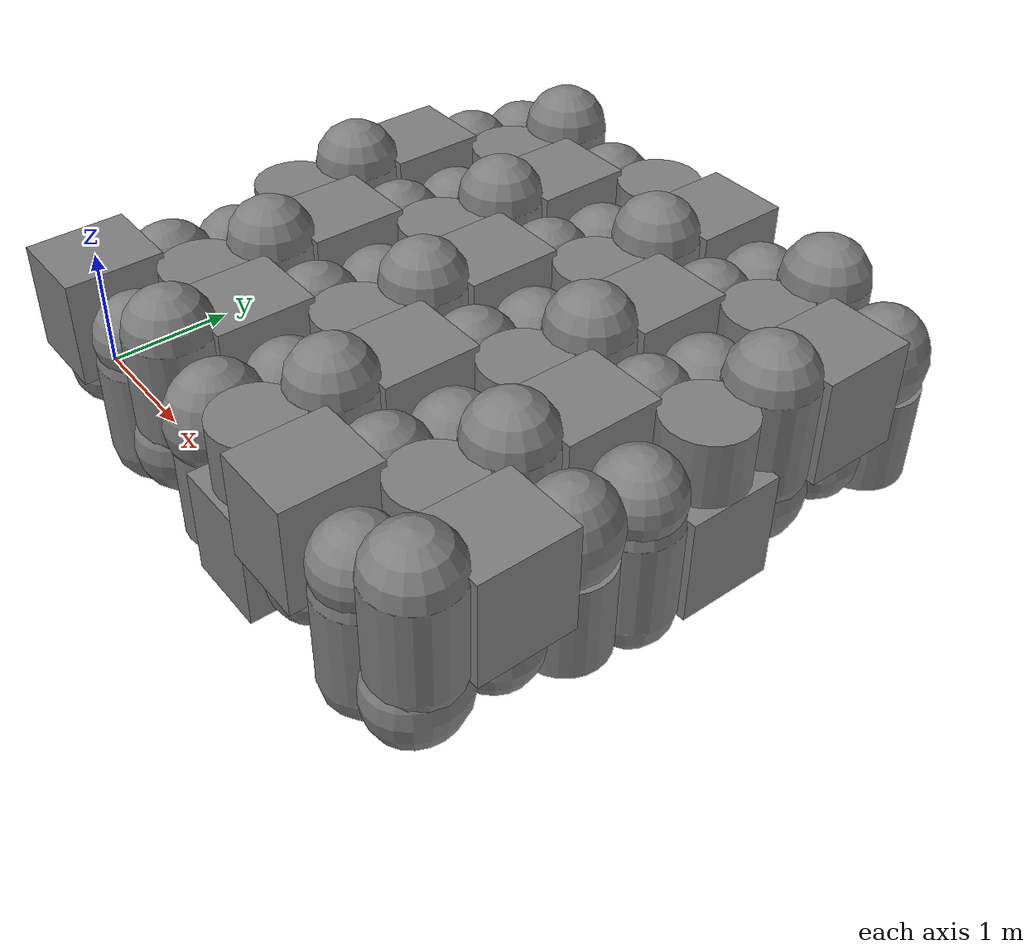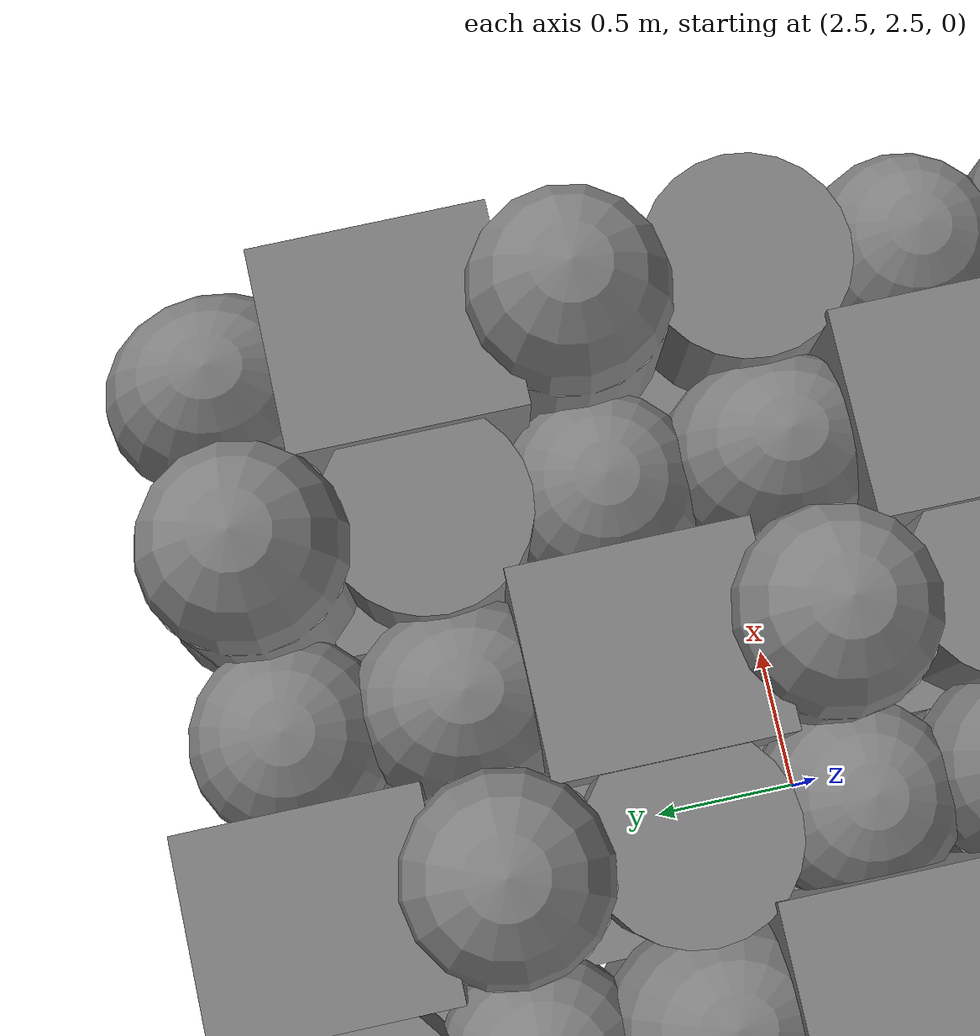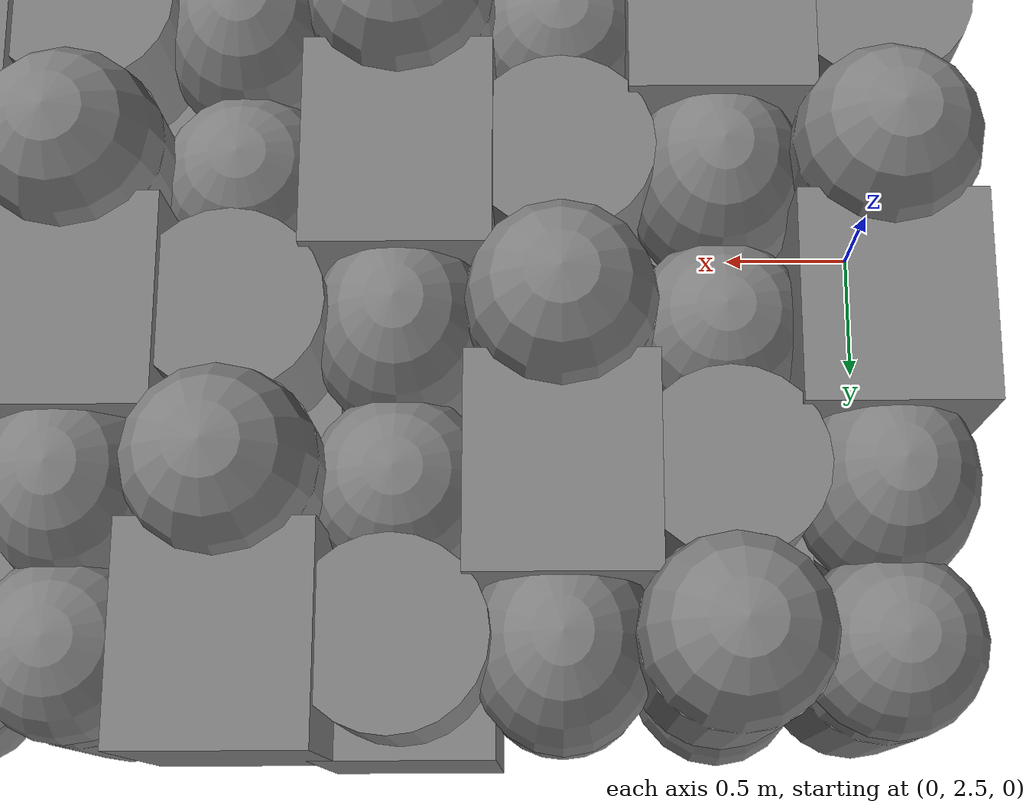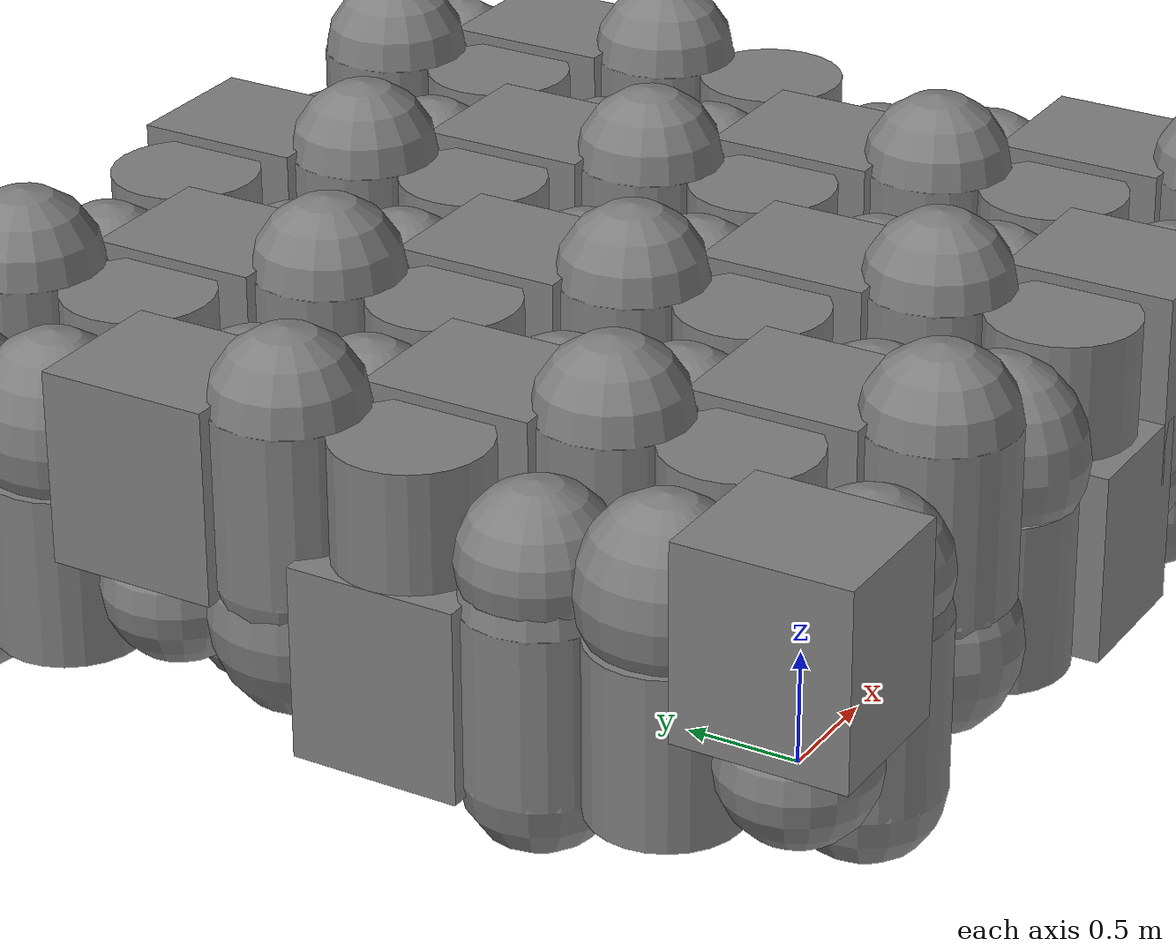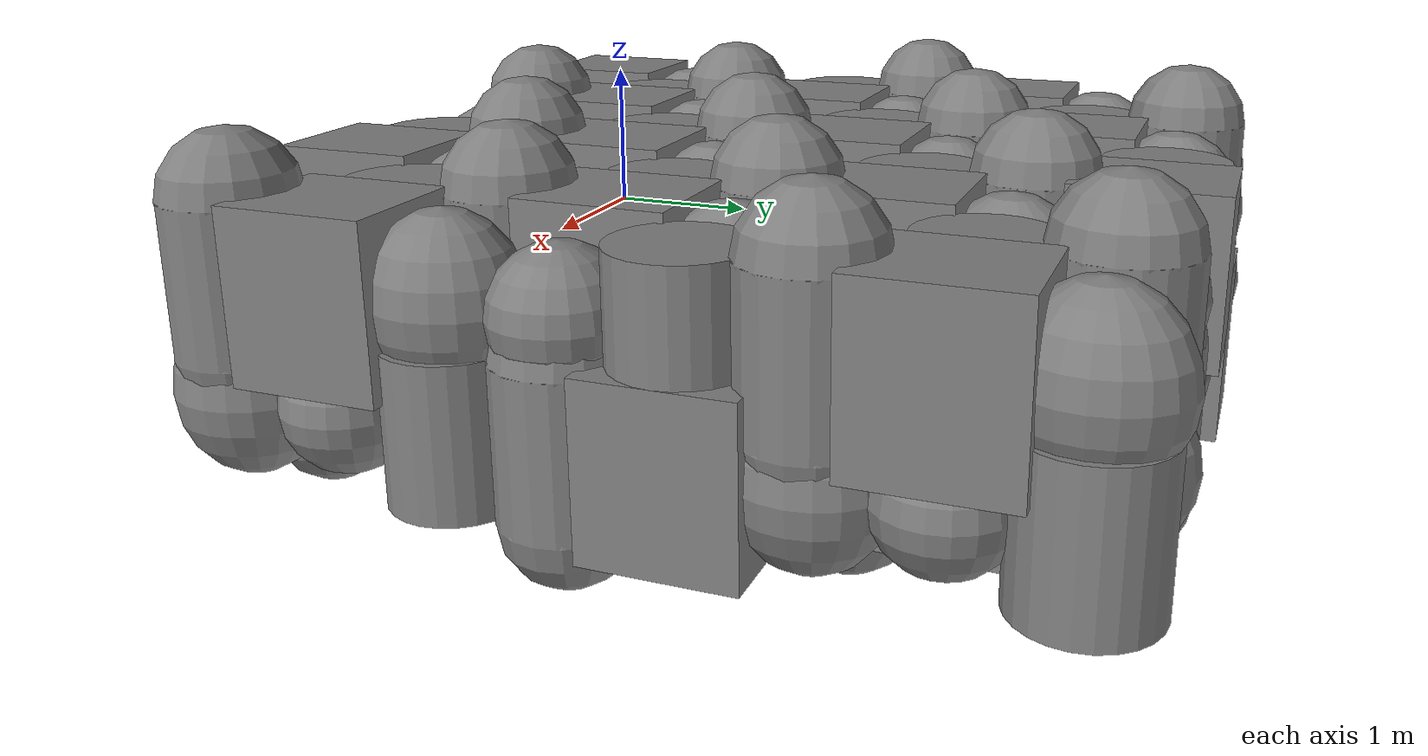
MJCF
<mujoco><option ccd_iterations="100"/><worldbody><body pos="0.0 0.0 0.0"><freejoint/><geom type="sphere" size=".35 .4 .45"/></body><body pos="0.6 0.0 0.0"><freejoint/><geom type="capsule" size=".35 .4 .45"/></body><body pos="1.2 0.0 0.0"><freejoint/><geom type="ellipsoid" size=".35 .4 .45"/></body><body pos="1.7999999999999998 0.0 0.0"><freejoint/><geom type="cylinder" size=".35 .4 .45"/></body><body pos="2.4 0.0 0.0"><freejoint/><geom type="box" size=".35 .4 .45"/></body><body pos="3.0 0.0 0.0"><freejoint/><geom type="sphere" size=".35 .4 .45"/></body><body pos="3.5999999999999996 0.0 0.0"><freejoint/><geom type="capsule" size=".35 .4 .45"/></body><body pos="4.2 0.0 0.0"><freejoint/><geom type="ellipsoid" size=".35 .4 .45"/></body><body pos="0.0 0.6 0.0"><freejoint/><geom type="cylinder" size=".35 .4 .45"/></body><body pos="0.6 0.6 0.0"><freejoint/><geom type="box" size=".35 .4 .45"/></body><body pos="1.2 0.6 0.0"><freejoint/><geom type="sphere" size=".35 .4 .45"/></body><body pos="1.7999999999999998 0.6 0.0"><freejoint/><geom type="capsule" size=".35 .4 .45"/></body><body pos="2.4 0.6 0.0"><freejoint/><geom type="ellipsoid" size=".35 .4 .45"/></body><body pos="3.0 0.6 0.0"><freejoint/><geom type="cylinder" size=".35 .4 .45"/></body><body pos="3.5999999999999996 0.6 0.0"><freejoint/><geom type="box" size=".35 .4 .45"/></body><body pos="4.2 0.6 0.0"><freejoint/><geom type="sphere" size=".35 .4 .45"/></body><body pos="0.0 1.2 0.0"><freejoint/><geom type="capsule" size=".35 .4 .45"/></body><body pos="0.6 1.2 0.0"><freejoint/><geom type="ellipsoid" size=".35 .4 .45"/></body><body pos="1.2 1.2 0.0"><freejoint/><geom type="cylinder" size=".35 .4 .45"/></body><body pos="1.7999999999999998 1.2 0.0"><freejoint/><geom type="box" size=".35 .4 .45"/></body><body pos="2.4 1.2 0.0"><freejoint/><geom type="sphere" size=".35 .4 .45"/></body><body pos="3.0 1.2 0.0"><freejoint/><geom type="capsule" size=".35 .4 .45"/></body><body pos="3.5999999999999996 1.2 0.0"><freejoint/><geom type="ellipsoid" size=".35 .4 .45"/></body><body pos="4.2 1.2 0.0"><freejoint/><geom type="cylinder" size=".35 .4 .45"/></body><body pos="0.0 1.7999999999999998 0.0"><freejoint/><geom type="box" size=".35 .4 .45"/></body><body pos="0.6 1.7999999999999998 0.0"><freejoint/><geom type="sphere" size=".35 .4 .45"/></body><body pos="1.2 1.7999999999999998 0.0"><freejoint/><geom type="capsule" size=".35 .4 .45"/></body><body pos="1.7999999999999998 1.7999999999999998 0.0"><freejoint/><geom type="ellipsoid" size=".35 .4 .45"/></body><body pos="2.4 1.7999999999999998 0.0"><freejoint/><geom type="cylinder" size=".35 .4 .45"/></body><body pos="3.0 1.7999999999999998 0.0"><freejoint/><geom type="box" size=".35 .4 .45"/></body><body pos="3.5999999999999996 1.7999999999999998 0.0"><freejoint/><geom type="sphere" size=".35 .4 .45"/></body><body pos="4.2 1.7999999999999998 0.0"><freejoint/><geom type="capsule" size=".35 .4 .45"/></body><body pos="0.0 2.4 0.0"><freejoint/><geom type="ellipsoid" size=".35 .4 .45"/></body><body pos="0.6 2.4 0.0"><freejoint/><geom type="cylinder" size=".35 .4 .45"/></body><body pos="1.2 2.4 0.0"><freejoint/><geom type="box" size=".35 .4 .45"/></body><body pos="1.7999999999999998 2.4 0.0"><freejoint/><geom type="sphere" size=".35 .4 .45"/></body><body pos="2.4 2.4 0.0"><freejoint/><geom type="capsule" size=".35 .4 .45"/></body><body pos="3.0 2.4 0.0"><freejoint/><geom type="ellipsoid" size=".35 .4 .45"/></body><body pos="3.5999999999999996 2.4 0.0"><freejoint/><geom type="cylinder" size=".35 .4 .45"/></body><body pos="4.2 2.4 0.0"><freejoint/><geom type="box" size=".35 .4 .45"/></body><body pos="0.0 3.0 0.0"><freejoint/><geom type="sphere" size=".35 .4 .45"/></body><body pos="0.6 3.0 0.0"><freejoint/><geom type="capsule" size=".35 .4 .45"/></body><body pos="1.2 3.0 0.0"><freejoint/><geom type="ellipsoid" size=".35 .4 .45"/></body><body pos="1.7999999999999998 3.0 0.0"><freejoint/><geom type="cylinder" size=".35 .4 .45"/></body><body pos="2.4 3.0 0.0"><freejoint/><geom type="box" size=".35 .4 .45"/></body><body pos="3.0 3.0 0.0"><freejoint/><geom type="sphere" size=".35 .4 .45"/></body><body pos="3.5999999999999996 3.0 0.0"><freejoint/><geom type="capsule" size=".35 .4 .45"/></body><body pos="4.2 3.0 0.0"><freejoint/><geom type="ellipsoid" size=".35 .4 .45"/></body><body pos="0.0 3.5999999999999996 0.0"><freejoint/><geom type="cylinder" size=".35 .4 .45"/></body><body pos="0.6 3.5999999999999996 0.0"><freejoint/><geom type="box" size=".35 .4 .45"/></body><body pos="1.2 3.5999999999999996 0.0"><freejoint/><geom type="sphere" size=".35 .4 .45"/></body><body pos="1.7999999999999998 3.5999999999999996 0.0"><freejoint/><geom type="capsule" size=".35 .4 .45"/></body><body pos="2.4 3.5999999999999996 0.0"><freejoint/><geom type="ellipsoid" size=".35 .4 .45"/></body><body pos="3.0 3.5999999999999996 0.0"><freejoint/><geom type="cylinder" size=".35 .4 .45"/></body><body pos="3.5999999999999996 3.5999999999999996 0.0"><freejoint/><geom type="box" size=".35 .4 .45"/></body><body pos="4.2 3.5999999999999996 0.0"><freejoint/><geom type="sphere" size=".35 .4 .45"/></body><body pos="0.0 4.2 0.0"><freejoint/><geom type="capsule" size=".35 .4 .45"/></body><body pos="0.6 4.2 0.0"><freejoint/><geom type="ellipsoid" size=".35 .4 .45"/></body><body pos="1.2 4.2 0.0"><freejoint/><geom type="cylinder" size=".35 .4 .45"/></body><body pos="1.7999999999999998 4.2 0.0"><freejoint/><geom type="box" size=".35 .4 .45"/></body><body pos="2.4 4.2 0.0"><freejoint/><geom type="sphere" size=".35 .4 .45"/></body><body pos="3.0 4.2 0.0"><freejoint/><geom type="capsule" size=".35 .4 .45"/></body><body pos="3.5999999999999996 4.2 0.0"><freejoint/><geom type="ellipsoid" size=".35 .4 .45"/></body><body pos="4.2 4.2 0.0"><freejoint/><geom type="cylinder" size=".35 .4 .45"/></body><body pos="0.0 0.0 0.6"><freejoint/><geom type="box" size=".35 .4 .45"/></body><body pos="0.6 0.0 0.6"><freejoint/><geom type="sphere" size=".35 .4 .45"/></body><body pos="1.2 0.0 0.6"><freejoint/><geom type="capsule" size=".35 .4 .45"/></body><body pos="1.7999999999999998 0.0 0.6"><freejoint/><geom type="ellipsoid" size=".35 .4 .45"/></body><body pos="2.4 0.0 0.6"><freejoint/><geom type="cylinder" size=".35 .4 .45"/></body><body pos="3.0 0.0 0.6"><freejoint/><geom type="box" size=".35 .4 .45"/></body><body pos="3.5999999999999996 0.0 0.6"><freejoint/><geom type="sphere" size=".35 .4 .45"/></body><body pos="4.2 0.0 0.6"><freejoint/><geom type="capsule" size=".35 .4 .45"/></body><body pos="0.0 0.6 0.6"><freejoint/><geom type="ellipsoid" size=".35 .4 .45"/></body><body pos="0.6 0.6 0.6"><freejoint/><geom type="cylinder" size=".35 .4 .45"/></body><body pos="1.2 0.6 0.6"><freejoint/><geom type="box" size=".35 .4 .45"/></body><body pos="1.7999999999999998 0.6 0.6"><freejoint/><geom type="sphere" size=".35 .4 .45"/></body><body pos="2.4 0.6 0.6"><freejoint/><geom type="capsule" size=".35 .4 .45"/></body><body pos="3.0 0.6 0.6"><freejoint/><geom type="ellipsoid" size=".35 .4 .45"/></body><body pos="3.5999999999999996 0.6 0.6"><freejoint/><geom type="cylinder" size=".35 .4 .45"/></body><body pos="4.2 0.6 0.6"><freejoint/><geom type="box" size=".35 .4 .45"/></body><body pos="0.0 1.2 0.6"><freejoint/><geom type="sphere" size=".35 .4 .45"/></body><body pos="0.6 1.2 0.6"><freejoint/><geom type="capsule" size=".35 .4 .45"/></body><body pos="1.2 1.2 0.6"><freejoint/><geom type="ellipsoid" size=".35 .4 .45"/></body><body pos="1.7999999999999998 1.2 0.6"><freejoint/><geom type="cylinder" size=".35 .4 .45"/></body><body pos="2.4 1.2 0.6"><freejoint/><geom type="box" size=".35 .4 .45"/></body><body pos="3.0 1.2 0.6"><freejoint/><geom type="sphere" size=".35 .4 .45"/></body><body pos="3.5999999999999996 1.2 0.6"><freejoint/><geom type="capsule" size=".35 .4 .45"/></body><body pos="4.2 1.2 0.6"><freejoint/><geom type="ellipsoid" size=".35 .4 .45"/></body><body pos="0.0 1.7999999999999998 0.6"><freejoint/><geom type="cylinder" size=".35 .4 .45"/></body><body pos="0.6 1.7999999999999998 0.6"><freejoint/><geom type="box" size=".35 .4 .45"/></body><body pos="1.2 1.7999999999999998 0.6"><freejoint/><geom type="sphere" size=".35 .4 .45"/></body><body pos="1.7999999999999998 1.7999999999999998 0.6"><freejoint/><geom type="capsule" size=".35 .4 .45"/></body><body pos="2.4 1.7999999999999998 0.6"><freejoint/><geom type="ellipsoid" size=".35 .4 .45"/></body><body pos="3.0 1.7999999999999998 0.6"><freejoint/><geom type="cylinder" size=".35 .4 .45"/></body><body pos="3.5999999999999996 1.7999999999999998 0.6"><freejoint/><geom type="box" size=".35 .4 .45"/></body><body pos="4.2 1.7999999999999998 0.6"><freejoint/><geom type="sphere" size=".35 .4 .45"/></body><body pos="0.0 2.4 0.6"><freejoint/><geom type="capsule" size=".35 .4 .45"/></body><body pos="0.6 2.4 0.6"><freejoint/><geom type="ellipsoid" size=".35 .4 .45"/></body><body pos="1.2 2.4 0.6"><freejoint/><geom type="cylinder" size=".35 .4 .45"/></body><body pos="1.7999999999999998 2.4 0.6"><freejoint/><geom type="box" size=".35 .4 .45"/></body><body pos="2.4 2.4 0.6"><freejoint/><geom type="sphere" size=".35 .4 .45"/></body><body pos="3.0 2.4 0.6"><freejoint/><geom type="capsule" size=".35 .4 .45"/></body><body pos="3.5999999999999996 2.4 0.6"><freejoint/><geom type="ellipsoid" size=".35 .4 .45"/></body><body pos="4.2 2.4 0.6"><freejoint/><geom type="cylinder" size=".35 .4 .45"/></body><body pos="0.0 3.0 0.6"><freejoint/><geom type="box" size=".35 .4 .45"/></body><body pos="0.6 3.0 0.6"><freejoint/><geom type="sphere" size=".35 .4 .45"/></body><body pos="1.2 3.0 0.6"><freejoint/><geom type="capsule" size=".35 .4 .45"/></body><body pos="1.7999999999999998 3.0 0.6"><freejoint/><geom type="ellipsoid" size=".35 .4 .45"/></body><body pos="2.4 3.0 0.6"><freejoint/><geom type="cylinder" size=".35 .4 .45"/></body><body pos="3.0 3.0 0.6"><freejoint/><geom type="box" size=".35 .4 .45"/></body><body pos="3.5999999999999996 3.0 0.6"><freejoint/><geom type="sphere" size=".35 .4 .45"/></body><body pos="4.2 3.0 0.6"><freejoint/><geom type="capsule" size=".35 .4 .45"/></body><body pos="0.0 3.5999999999999996 0.6"><freejoint/><geom type="ellipsoid" size=".35 .4 .45"/></body><body pos="0.6 3.5999999999999996 0.6"><freejoint/><geom type="cylinder" size=".35 .4 .45"/></body><body pos="1.2 3.5999999999999996 0.6"><freejoint/><geom type="box" size=".35 .4 .45"/></body><body pos="1.7999999999999998 3.5999999999999996 0.6"><freejoint/><geom type="sphere" size=".35 .4 .45"/></body><body pos="2.4 3.5999999999999996 0.6"><freejoint/><geom type="capsule" size=".35 .4 .45"/></body><body pos="3.0 3.5999999999999996 0.6"><freejoint/><geom type="ellipsoid" size=".35 .4 .45"/></body><body pos="3.5999999999999996 3.5999999999999996 0.6"><freejoint/><geom type="cylinder" size=".35 .4 .45"/></body><body pos="4.2 3.5999999999999996 0.6"><freejoint/><geom type="box" size=".35 .4 .45"/></body><body pos="0.0 4.2 0.6"><freejoint/><geom type="sphere" size=".35 .4 .45"/></body><body pos="0.6 4.2 0.6"><freejoint/><geom type="capsule" size=".35 .4 .45"/></body><body pos="1.2 4.2 0.6"><freejoint/><geom type="ellipsoid" size=".35 .4 .45"/></body><body pos="1.7999999999999998 4.2 0.6"><freejoint/><geom type="cylinder" size=".35 .4 .45"/></body><body pos="2.4 4.2 0.6"><freejoint/><geom type="box" size=".35 .4 .45"/></body><body pos="3.0 4.2 0.6"><freejoint/><geom type="sphere" size=".35 .4 .45"/></body><body pos="3.5999999999999996 4.2 0.6"><freejoint/><geom type="capsule" size=".35 .4 .45"/></body><body pos="4.2 4.2 0.6"><freejoint/><geom type="ellipsoid" size=".35 .4 .45"/></body></worldbody></mujoco>
